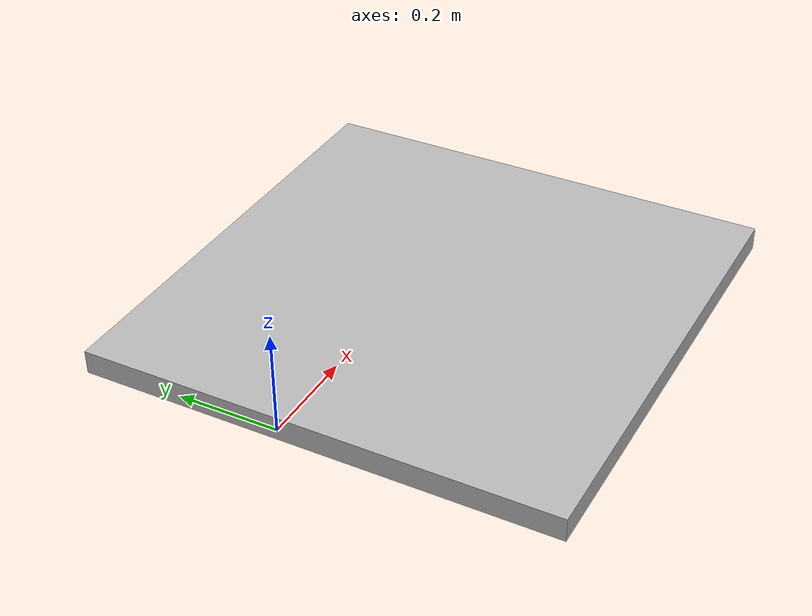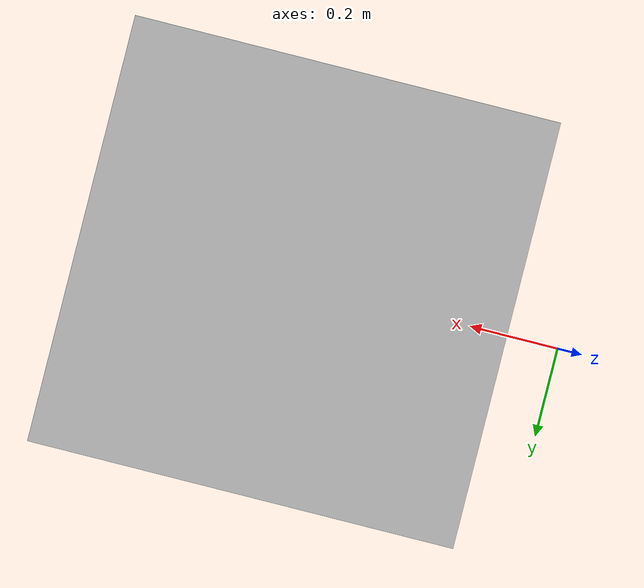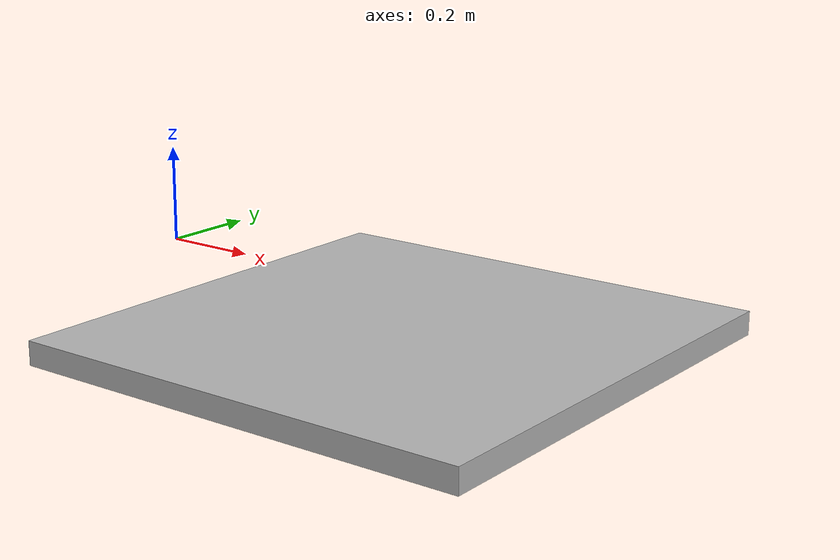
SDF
<?xml version="1.0"?>
<sdf version="1.4">

    <!-- You can change this world to his needs or use another one. -->

    <world name="default">

        <!-- box (like a table) -->
        <model name="table">
            <pose> 0.6 0 -0.1 0 0 0</pose>
            <static>true</static>
            <link name='linkTable'>
                <pose>0 0 0 0 0 0</pose>

                <collision name="my_collisionTable">
                    <pose>0 0 0 0 0 0</pose>
                    <geometry>
                        <box>
                            <size>1 1 0.05</size>
                        </box>
                    </geometry>
                </collision>

                <visual name="my_visualTable">
                    <geometry>
                        <box>
                            <size>1 1 0.05</size>
                        </box>
                    </geometry>
                </visual>

                <self_collide>0</self_collide>
                <gravity>1</gravity>
            </link>
        </model>

    </world>

</sdf>
